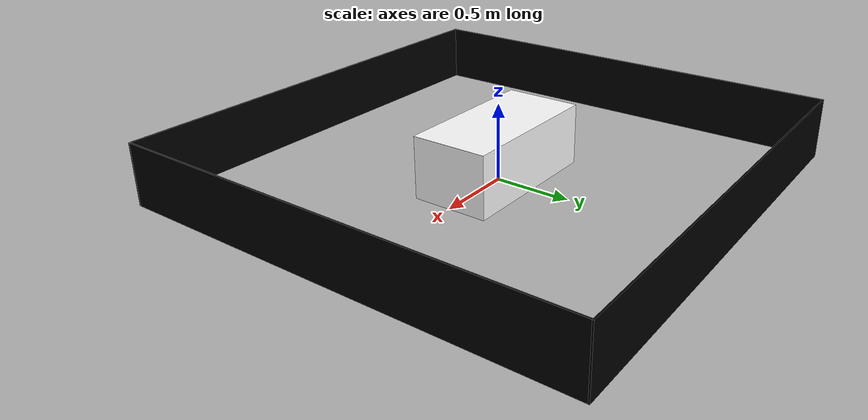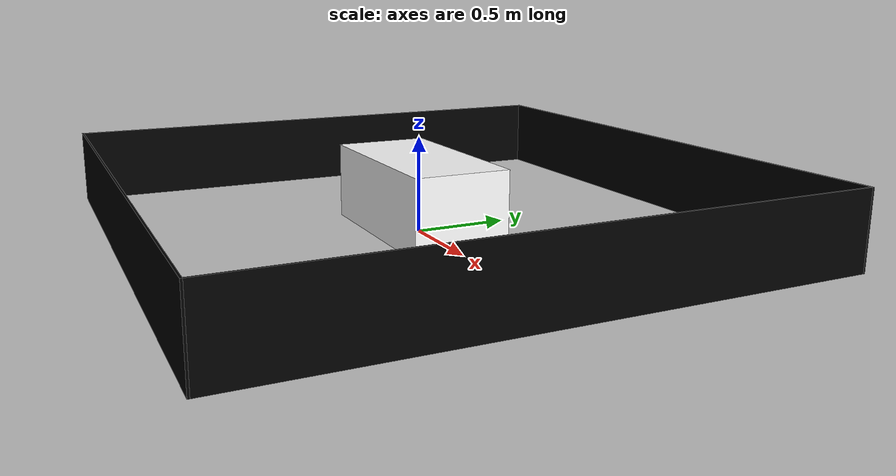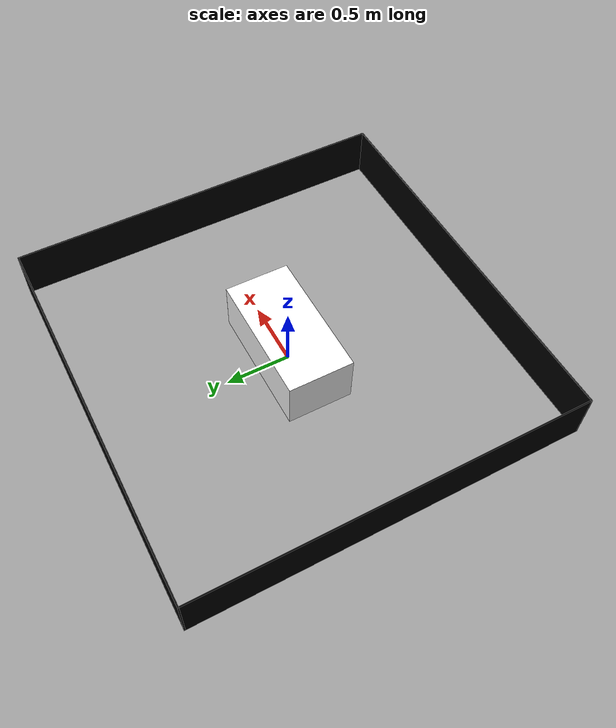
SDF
<?xml version="1.0" ?>
<sdf version="1.8">
  <model name="stadium">
    <static>true</static>

    <link name="wall_right">
      <pose>0 -1.505 0.2 0 0 0</pose>
      <collision name="collision">
        <geometry>
          <box>
            <size>3.02 0.01 0.4</size>
          </box>
        </geometry>
      </collision>
      <visual name="visual">
        <geometry>
          <box>
            <size>3.02 0.01 0.4</size>
          </box>
        </geometry>
        <material>
          <ambient>0.0 0.0 0.0 1</ambient>
          <diffuse>0.0 0.0 0.0 1</diffuse>
        </material>
      </visual>
    </link>

    <link name="wall_left">
      <pose>0 1.505 0.2 0 0 0</pose>
      <collision name="collision">
        <geometry>
          <box>
            <size>3.02 0.01 0.4</size>
          </box>
        </geometry>
      </collision>
      <visual name="visual">
        <geometry>
          <box>
            <size>3.02 0.01 0.4</size>
          </box>
        </geometry>
        <material>
          <ambient>0.0 0.0 0.0 1</ambient>
          <diffuse>0.0 0.0 0.0 1</diffuse>
        </material>
      </visual>
    </link>

    <link name="wall_bottom">
      <pose>-1.505 0 0.2 0 0 0</pose>
      <collision name="collision">
        <geometry>
          <box>
            <size>0.01 3.0 0.4</size>
          </box>
        </geometry>
      </collision>
      <visual name="visual">
        <geometry>
          <box>
            <size>0.01 3.0 0.4</size>
          </box>
        </geometry>
        <material>
          <ambient>0.0 0.0 0.0 1</ambient>
          <diffuse>0.0 0.0 0.0 1</diffuse>
        </material>
      </visual>
    </link>

    <link name="wall_top">
      <pose>1.505 0 0.2 0 0 0</pose>
      <collision name="collision">
        <geometry>
          <box>
            <size>0.01 3.0 0.4</size>
          </box>
        </geometry>
      </collision>
      <visual name="visual">
        <geometry>
          <box>
            <size>0.01 3.0 0.4</size>
          </box>
        </geometry>
        <material>
          <ambient>0.0 0.0 0.0 1</ambient>
          <diffuse>0.0 0.0 0.0 1</diffuse>
        </material>
      </visual>
    </link>

    <link name="center_block">
      <pose>0 0 0.2 0 0 0</pose>
      <collision name="collision">
        <geometry>
          <box>
            <size>1.0 0.5 0.4</size>
          </box>
        </geometry>
      </collision>
      <visual name="up">
        <pose>0 0 0.19995 0 0 0</pose>
        <geometry>
          <box>
            <size>1 0.5 0.0001</size>
          </box>
        </geometry>
        <material>
            <pbr>
              <metal>
                <albedo_map>model://turtlebot3_autorace_2025/stadium/materials/textures/direction.png</albedo_map>
              </metal>
            </pbr>
            <ambient>1 1 1 1</ambient>
            <diffuse>1 1 1 1</diffuse>
            <specular>0.2 0.2 0.2 1</specular>
            <emissive>0 0 0 1</emissive>
        </material>
      </visual>
      <visual name="bottom">
        <pose>-0.49995 0 0 0 0 0</pose>
        <geometry>
          <box>
            <size>0.0001 0.5 0.4</size>
          </box>
        </geometry>
        <material>
            <pbr>
              <metal>
                <albedo_map>model://turtlebot3_autorace_2025/stadium/materials/textures/arrow.png</albedo_map>
              </metal>
            </pbr>
            <ambient>1 1 1 1</ambient>
            <diffuse>1 1 1 1</diffuse>
            <specular>0.2 0.2 0.2 1</specular>
            <emissive>0 0 0 1</emissive>
        </material>
      </visual>
      <visual name="top">
        <pose>0.49995 0 0 0 0 0</pose>
        <geometry>
          <box>
            <size>0.0001 0.5 0.4</size>
          </box>
        </geometry>
        <material>
            <pbr>
              <metal>
                <albedo_map>model://turtlebot3_autorace_2025/stadium/materials/textures/arrow.png</albedo_map>
              </metal>
            </pbr>
            <ambient>1 1 1 1</ambient>
            <diffuse>1 1 1 1</diffuse>
            <specular>0.2 0.2 0.2 1</specular>
            <emissive>0 0 0 1</emissive>
        </material>
      </visual>
      <visual name="left">
        <pose>0 0.24995 0 0 0 0</pose>
        <geometry>
          <box>
            <size>1 0.0001 0.4</size>
          </box>
        </geometry>
        <material>
            <pbr>
              <metal>
                <albedo_map>model://turtlebot3_autorace_2025/stadium/materials/textures/arrow.png</albedo_map>
              </metal>
            </pbr>
            <ambient>1 1 1 1</ambient>
            <diffuse>1 1 1 1</diffuse>
            <specular>0.2 0.2 0.2 1</specular>
            <emissive>0 0 0 1</emissive>
        </material>
      </visual>
      <visual name="right">
        <pose>0 -0.24995 0 0 0 0</pose>
        <geometry>
          <box>
            <size>1 0.0001 0.4</size>
          </box>
        </geometry>
        <material>
            <pbr>
              <metal>
                <albedo_map>model://turtlebot3_autorace_2025/stadium/materials/textures/arrow.png</albedo_map>
              </metal>
            </pbr>
            <ambient>1 1 1 1</ambient>
            <diffuse>1 1 1 1</diffuse>
            <specular>0.2 0.2 0.2 1</specular>
            <emissive>0 0 0 1</emissive>
        </material>
      </visual>
    </link>

  </model>
</sdf>
